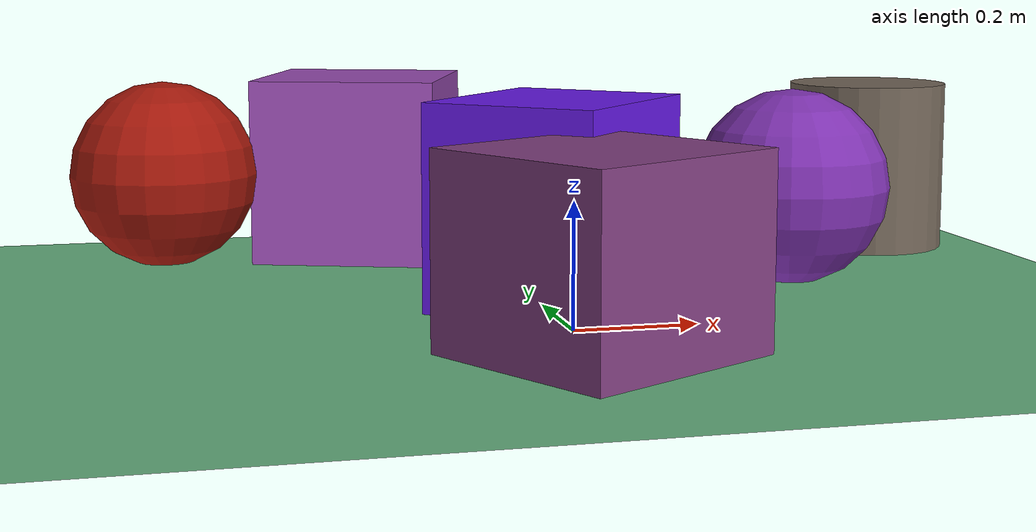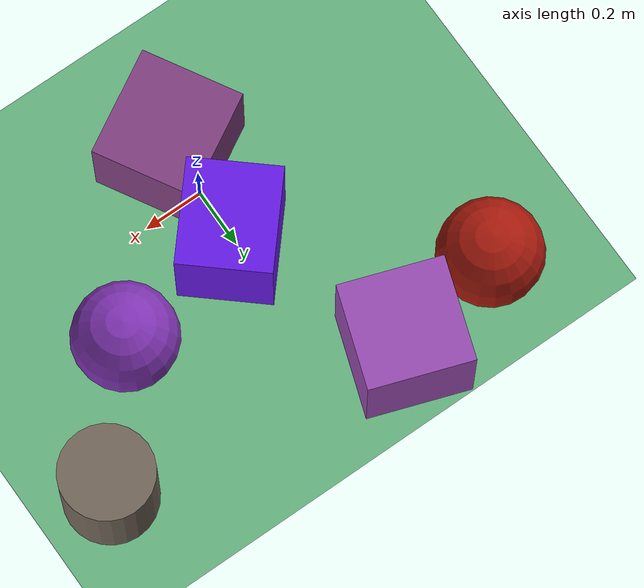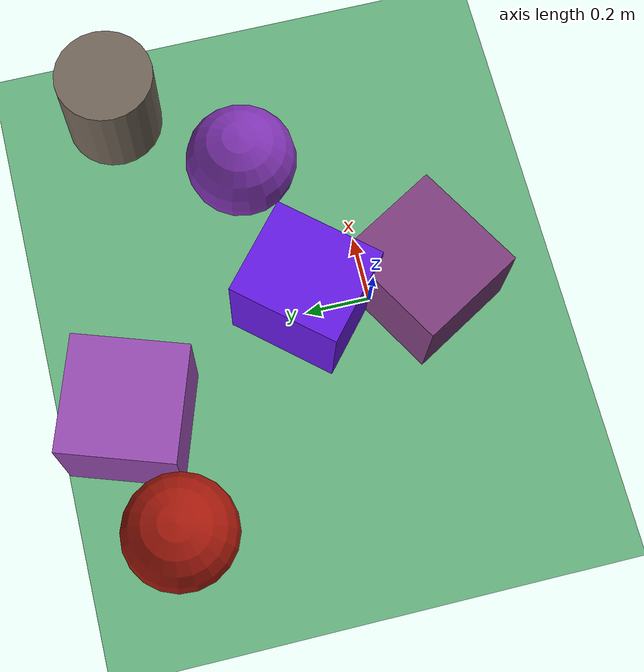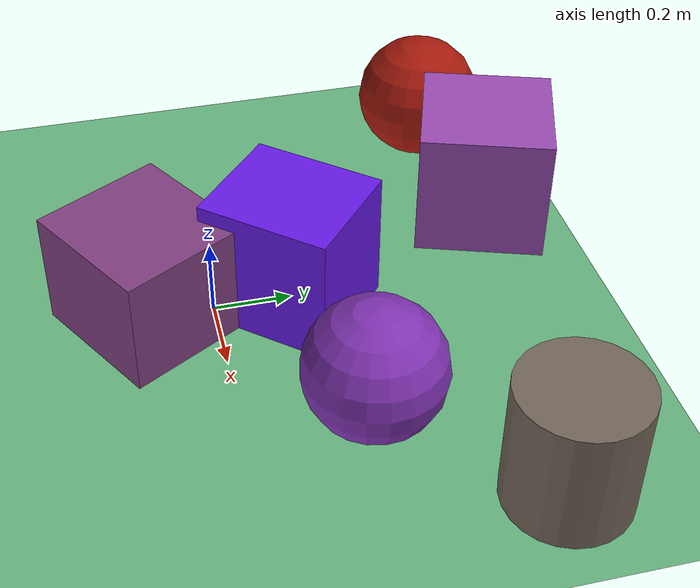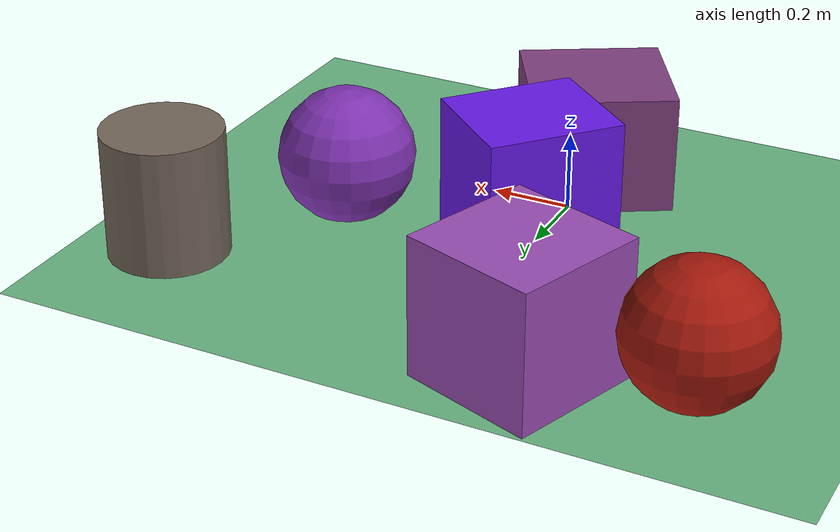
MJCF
<mujoco>
   <asset>
<texture type="skybox" builtin="gradient" rgb1="0.7 0.5 0.0" rgb2="0.8 0.9 0.1" width="256" height="256"/>
<texture name="checker_0" builtin="checker" rgb1="0.7 0.2 0.1" rgb2="0.6 0.0 0.0" width="200" height="200"/>
<texture name="flat_1" builtin="flat" rgb1="0.5 0.2 0.7" rgb2="0.5 0.2 0.7"  width="200" height="200"/>
<texture name="checker_2" builtin="checker" rgb1="0.8 0.5 0.8" rgb2="0.4 0.1 0.6" width="200" height="200"/>
<texture name="checker_3" builtin="checker" rgb1="0.2 0.2 0.1" rgb2="0.8 0.3 0.9" width="200" height="200"/>
<texture name="checker_4" builtin="checker" rgb1="0.4 0.1 0.3" rgb2="0.5 0.7 0.4" width="200" height="200"/>
<texture name="flat_5" builtin="flat" rgb1="0.4 0.1 0.9" rgb2="0.4 0.1 0.9"  width="200" height="200"/><material name="checker_0_mat" reflectance="0" texrepeat="6 6" texture="checker_0" texuniform="false" />
<material name="flat_1_mat" reflectance="0" texture="flat_1" texuniform="true"/>
<material name="checker_2_mat" reflectance="0" texrepeat="7 7" texture="checker_2" texuniform="false" />
<material name="checker_3_mat" reflectance="0" texrepeat="9 9" texture="checker_3" texuniform="false" />
<material name="checker_4_mat" reflectance="0" texrepeat="6 6" texture="checker_4" texuniform="false" />
<material name="flat_5_mat" reflectance="0" texture="flat_5" texuniform="true"/>
   </asset>

   <worldbody>
      <light diffuse=".9 .9 .9" pos="0 0 3" dir="0 0 -1"/>
     <geom type="plane" size="1 1 0.1" rgba="0.4 0.7 0.5 1"/>
<geom type="sphere" pos="-0.59 0.71 0.17" size="0.17 0.17 0.17" material="checker_0_mat" euler="0 0 5" />
<geom type="sphere" pos="0.47 0.29 0.17" size="0.17 0.17 0.17" material="flat_1_mat" euler="0 0 86" />
<geom type="box" pos="-0.22 0.78 0.17" size="0.17 0.17 0.17" material="checker_2_mat" euler="0 0 71" />
<geom type="box" pos="0.0 -0.16 0.15" size="0.18 0.17 0.15" material="checker_3_mat" euler="0 0 30" />
<geom type="cylinder" pos="0.77 0.64 0.16" size="0.15 0.16 0.16" material="checker_4_mat" euler="0 0 45" />
<geom type="box" pos="0.02 0.2 0.17" size="0.17 0.15 0.17" material="flat_5_mat" euler="0 0 49" /><camera euler="60 0 180" fovy="60" name="camera1" pos="-0.2 -1.5 1"></camera>   </worldbody>
</mujoco>
